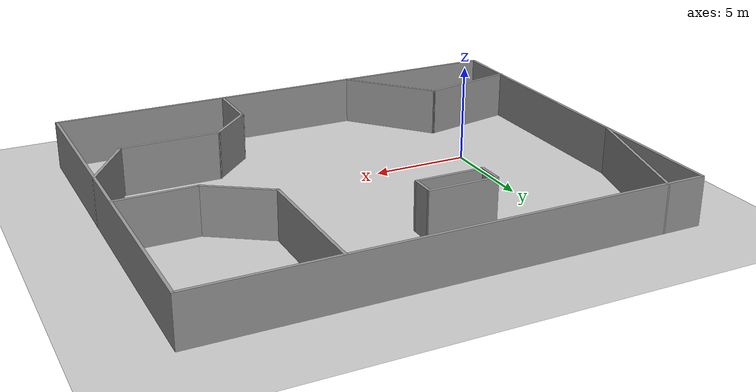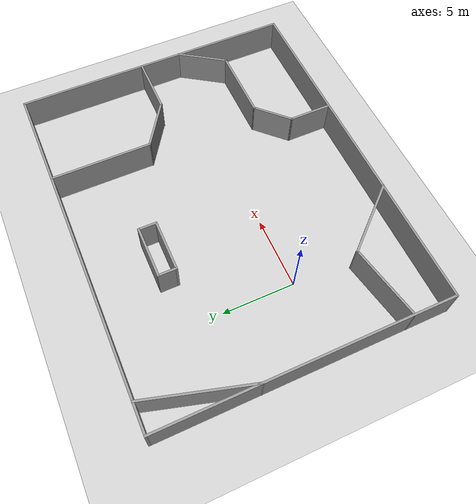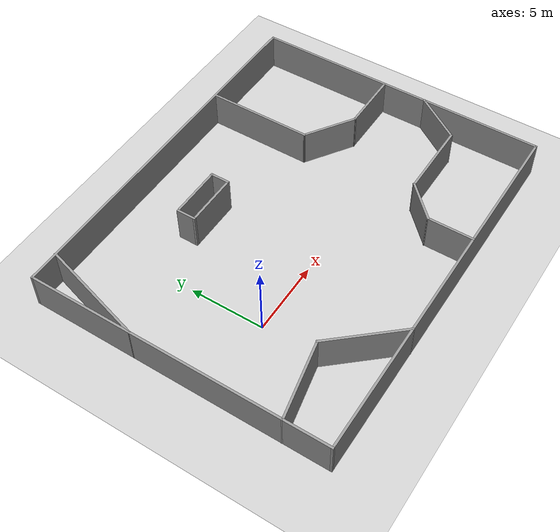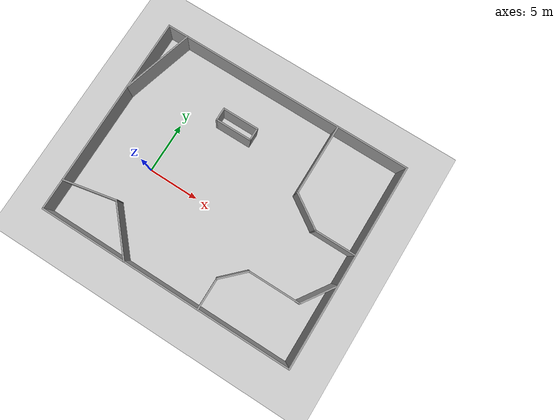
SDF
<sdf version="1.6">
 <world name="default">
  <light name="sun" type="directional">
   <pose>0 0 10 0 -0 0</pose>
   <diffuse>0.8 0.8 0.8 1</diffuse>
   <specular>0.2 0.2 0.2 1</specular>
   <attenuation>
    <range>1000</range>
    <constant>0.9</constant>
    <linear>0.01</linear>
    <quadratic>0.001</quadratic>
   </attenuation>
   <direction>-0.5 0.1 -0.9</direction>
   <spot><inner_angle>0</inner_angle><outer_angle>0</outer_angle><falloff>0</falloff></spot>
  </light>
  <model name="ground_plane">
   <static>1</static>
   <link name="link">
    <collision name="collision">
     <geometry><plane><normal>0 0 1</normal><size>100 100</size></plane></geometry>
     <surface>
      <contact><collide_bitmask>65535</collide_bitmask></contact>
      <friction><ode><mu>100</mu><mu2>50</mu2></ode></friction>
     </surface>
    </collision>
    <visual name="visual">
     <cast_shadows>0</cast_shadows>
     <geometry><plane><normal>0 0 1</normal><size>100 100</size></plane></geometry>
     <material>
      <script><uri>file://media/materials/scripts/gazebo.material</uri><name>Gazebo/Grey</name></script>
     </material>
    </visual>
   </link>
  </model>
  <gravity>0 0 -9.8</gravity>
  <magnetic_field>6e-06 2.3e-05 -4.2e-05</magnetic_field>
  <atmosphere type="adiabatic"/>
  <physics type="ode">
   <max_step_size>0.001</max_step_size>
   <real_time_factor>1</real_time_factor>
   <real_time_update_rate>1000</real_time_update_rate>
  </physics>
  <scene><ambient>0.4 0.4 0.4 1</ambient><background>0.7 0.7 0.7 1</background><shadows>1</shadows></scene>
  <spherical_coordinates>
   <surface_model>EARTH_WGS84</surface_model>
   <latitude_deg>0</latitude_deg>
   <longitude_deg>0</longitude_deg>
   <elevation>0</elevation>
   <heading_deg>0</heading_deg>
  </spherical_coordinates>
  <model name="test_field.world">
   <pose>7 2 0 0 -0 0</pose>
   <link name="Wall_0">
    <collision name="Wall_0_Collision">
     <geometry><box><size>20.15 0.15 2.5</size></box></geometry>
     <pose>0 0 1.25 0 -0 0</pose>
    </collision>
    <visual name="Wall_0_Visual">
     <pose>0 0 1.25 0 -0 0</pose>
     <geometry><box><size>20.15 0.15 2.5</size></box></geometry>
     <material>
      <script><uri>file://media/materials/scripts/gazebo.material</uri><name>Gazebo/Grey</name></script>
      <ambient>1 1 1 1</ambient>
     </material>
     <meta><layer>0</layer></meta>
    </visual>
    <pose>12.4944 0.006557 0 0 -0 -1.5708</pose>
   </link>
   <link name="Wall_1">
    <collision name="Wall_1_Collision">
     <geometry><box><size>25.15 0.15 2.5</size></box></geometry>
     <pose>0 0 1.25 0 -0 0</pose>
    </collision>
    <visual name="Wall_1_Visual">
     <pose>0 0 1.25 0 -0 0</pose>
     <geometry><box><size>25.15 0.15 2.5</size></box></geometry>
     <material>
      <script><uri>file://media/materials/scripts/gazebo.material</uri><name>Gazebo/Grey</name></script>
      <ambient>1 1 1 1</ambient>
     </material>
     <meta><layer>0</layer></meta>
    </visual>
    <pose>-0.005644 -9.99344 0 0 -0 3.14159</pose>
   </link>
   <link name="Wall_2">
    <collision name="Wall_2_Collision">
     <geometry><box><size>20.15 0.15 2.5</size></box></geometry>
     <pose>0 0 1.25 0 -0 0</pose>
    </collision>
    <visual name="Wall_2_Visual">
     <pose>0 0 1.25 0 -0 0</pose>
     <geometry><box><size>20.15 0.15 2.5</size></box></geometry>
     <material>
      <script><uri>file://media/materials/scripts/gazebo.material</uri><name>Gazebo/Grey</name></script>
      <ambient>1 1 1 1</ambient>
     </material>
     <meta><layer>0</layer></meta>
    </visual>
    <pose>-12.5056 0.006557 0 0 -0 1.5708</pose>
   </link>
   <link name="Wall_24">
    <collision name="Wall_24_Collision">
     <geometry><box><size>7.43011 0.15 2.5</size></box></geometry>
     <pose>0 0 1.25 0 -0 0</pose>
    </collision>
    <visual name="Wall_24_Visual">
     <pose>0 0 1.25 0 -0 0</pose>
     <geometry><box><size>7.43011 0.15 2.5</size></box></geometry>
     <material>
      <script><uri>file://media/materials/scripts/gazebo.material</uri><name>Gazebo/Grey</name></script>
      <ambient>1 1 1 1</ambient>
     </material>
     <meta><layer>0</layer></meta>
    </visual>
    <pose>-11.5056 6.50656 0 0 -0 1.2925</pose>
   </link>
   <link name="Wall_26">
    <collision name="Wall_26_Collision">
     <geometry><box><size>5.24902 0.15 2.5</size></box></geometry>
     <pose>0 0 1.25 0 -0 0</pose>
    </collision>
    <visual name="Wall_26_Visual">
     <pose>0 0 1.25 0 -0 0</pose>
     <geometry><box><size>5.24902 0.15 2.5</size></box></geometry>
     <material>
      <script><uri>file://media/materials/scripts/gazebo.material</uri><name>Gazebo/Grey</name></script>
      <ambient>1 1 1 1</ambient>
     </material>
     <meta><layer>0</layer></meta>
    </visual>
    <pose>-10.0056 -6.49344 0 0 -0 0.197396</pose>
   </link>
   <link name="Wall_27">
    <collision name="Wall_27_Collision">
     <geometry><box><size>5.46507 0.15 2.5</size></box></geometry>
     <pose>0 0 1.25 0 -0 0</pose>
    </collision>
    <visual name="Wall_27_Visual">
     <pose>0 0 1.25 0 -0 0</pose>
     <geometry><box><size>5.46507 0.15 2.5</size></box></geometry>
     <material>
      <script><uri>file://media/materials/scripts/gazebo.material</uri><name>Gazebo/Grey</name></script>
      <ambient>1 1 1 1</ambient>
     </material>
     <meta><layer>0</layer></meta>
    </visual>
    <pose>-5.75564 -7.99344 0 0 -0 -0.851966</pose>
   </link>
   <link name="Wall_29">
    <collision name="Wall_29_Collision">
     <geometry><box><size>3.15 0.15 2.5</size></box></geometry>
     <pose>0 0 1.25 0 -0 0</pose>
    </collision>
    <visual name="Wall_29_Visual">
     <pose>0 0 1.25 0 -0 0</pose>
     <geometry><box><size>3.15 0.15 2.5</size></box></geometry>
     <material>
      <script><uri>file://media/materials/scripts/gazebo.material</uri><name>Gazebo/Grey</name></script>
      <ambient>1 1 1 1</ambient>
     </material>
     <meta><layer>0</layer></meta>
    </visual>
    <pose>3.49436 -8.49344 0 0 -0 1.5708</pose>
   </link>
   <link name="Wall_3">
    <collision name="Wall_3_Collision">
     <geometry><box><size>25.15 0.15 2.5</size></box></geometry>
     <pose>0 0 1.25 0 -0 0</pose>
    </collision>
    <visual name="Wall_3_Visual">
     <pose>0 0 1.25 0 -0 0</pose>
     <geometry><box><size>25.15 0.15 2.5</size></box></geometry>
     <material>
      <script><uri>file://media/materials/scripts/gazebo.material</uri><name>Gazebo/Grey</name></script>
      <ambient>1 1 1 1</ambient>
     </material>
     <meta><layer>0</layer></meta>
    </visual>
    <pose>-0.005644 10.0066 0 0 -0 0</pose>
   </link>
   <link name="Wall_30">
    <collision name="Wall_30_Collision">
     <geometry><box><size>2.97843 0.15 2.5</size></box></geometry>
     <pose>0 0 1.25 0 -0 0</pose>
    </collision>
    <visual name="Wall_30_Visual">
     <pose>0 0 1.25 0 -0 0</pose>
     <geometry><box><size>2.97843 0.15 2.5</size></box></geometry>
     <material>
      <script><uri>file://media/materials/scripts/gazebo.material</uri><name>Gazebo/Grey</name></script>
      <ambient>1 1 1 1</ambient>
     </material>
     <meta><layer>0</layer></meta>
    </visual>
    <pose>4.49436 -5.99344 0 0 -0 0.785398</pose>
   </link>
   <link name="Wall_31">
    <collision name="Wall_31_Collision">
     <geometry><box><size>5.15 0.15 2.5</size></box></geometry>
     <pose>0 0 1.25 0 -0 0</pose>
    </collision>
    <visual name="Wall_31_Visual">
     <pose>0 0 1.25 0 -0 0</pose>
     <geometry><box><size>5.15 0.15 2.5</size></box></geometry>
     <material>
      <script><uri>file://media/materials/scripts/gazebo.material</uri><name>Gazebo/Grey</name></script>
      <ambient>1 1 1 1</ambient>
     </material>
     <meta><layer>0</layer></meta>
    </visual>
    <pose>7.99436 -4.99344 0 0 -0 0</pose>
   </link>
   <link name="Wall_32">
    <collision name="Wall_32_Collision">
     <geometry><box><size>3.75555 0.15 2.5</size></box></geometry>
     <pose>0 0 1.25 0 -0 0</pose>
    </collision>
    <visual name="Wall_32_Visual">
     <pose>0 0 1.25 0 -0 0</pose>
     <geometry><box><size>3.75555 0.15 2.5</size></box></geometry>
     <material>
      <script><uri>file://media/materials/scripts/gazebo.material</uri><name>Gazebo/Grey</name></script>
      <ambient>1 1 1 1</ambient>
     </material>
     <meta><layer>0</layer></meta>
    </visual>
    <pose>11.4944 -3.49344 0 0 -0 0.982794</pose>
   </link>
   <link name="Wall_34">
    <collision name="Wall_34_Collision">
     <geometry><box><size>7.15 0.15 2.5</size></box></geometry>
     <pose>0 0 1.25 0 -0 0</pose>
    </collision>
    <visual name="Wall_34_Visual">
     <pose>0 0 1.25 0 -0 0</pose>
     <geometry><box><size>7.15 0.15 2.5</size></box></geometry>
     <material>
      <script><uri>file://media/materials/scripts/gazebo.material</uri><name>Gazebo/Grey</name></script>
      <ambient>1 1 1 1</ambient>
     </material>
     <meta><layer>0</layer></meta>
    </visual>
    <pose>5.49436 6.50656 0 0 -0 -1.5708</pose>
   </link>
   <link name="Wall_35">
    <collision name="Wall_35_Collision">
     <geometry><box><size>3.75555 0.15 2.5</size></box></geometry>
     <pose>0 0 1.25 0 -0 0</pose>
    </collision>
    <visual name="Wall_35_Visual">
     <pose>0 0 1.25 0 -0 0</pose>
     <geometry><box><size>3.75555 0.15 2.5</size></box></geometry>
     <material>
      <script><uri>file://media/materials/scripts/gazebo.material</uri><name>Gazebo/Grey</name></script>
      <ambient>1 1 1 1</ambient>
     </material>
     <meta><layer>0</layer></meta>
    </visual>
    <pose>6.99436 2.00656 0 0 -0 -0.588003</pose>
   </link>
   <link name="Wall_36">
    <collision name="Wall_36_Collision">
     <geometry><box><size>4.15 0.15 2.5</size></box></geometry>
     <pose>0 0 1.25 0 -0 0</pose>
    </collision>
    <visual name="Wall_36_Visual">
     <pose>0 0 1.25 0 -0 0</pose>
     <geometry><box><size>4.15 0.15 2.5</size></box></geometry>
     <material>
      <script><uri>file://media/materials/scripts/gazebo.material</uri><name>Gazebo/Grey</name></script>
      <ambient>1 1 1 1</ambient>
     </material>
     <meta><layer>0</layer></meta>
    </visual>
    <pose>10.4944 1.00656 0 0 -0 0</pose>
   </link>
   <link name="Wall_38">
    <collision name="Wall_38_Collision">
     <geometry><box><size>3.65 0.15 2.5</size></box></geometry>
     <pose>0 0 1.25 0 -0 0</pose>
    </collision>
    <visual name="Wall_38_Visual">
     <pose>0 0 1.25 0 -0 0</pose>
     <geometry><box><size>3.65 0.15 2.5</size></box></geometry>
     <material>
      <script><uri>file://media/materials/scripts/gazebo.material</uri><name>Gazebo/Grey</name></script>
      <ambient>1 1 1 1</ambient>
     </material>
     <meta><layer>0</layer></meta>
    </visual>
    <pose>-2.25564 6.00656 0 0 -0 0</pose>
   </link>
   <link name="Wall_39">
    <collision name="Wall_39_Collision">
     <geometry><box><size>1.35 0.15 2.5</size></box></geometry>
     <pose>0 0 1.25 0 -0 0</pose>
    </collision>
    <visual name="Wall_39_Visual">
     <pose>0 0 1.25 0 -0 0</pose>
     <geometry><box><size>1.35 0.15 2.5</size></box></geometry>
     <material>
      <script><uri>file://media/materials/scripts/gazebo.material</uri><name>Gazebo/Grey</name></script>
      <ambient>1 1 1 1</ambient>
     </material>
     <meta><layer>0</layer></meta>
    </visual>
    <pose>-0.505644 5.40656 0 0 -0 -1.5708</pose>
   </link>
   <link name="Wall_40">
    <collision name="Wall_40_Collision">
     <geometry><box><size>3.65 0.15 2.5</size></box></geometry>
     <pose>0 0 1.25 0 -0 0</pose>
    </collision>
    <visual name="Wall_40_Visual">
     <pose>0 0 1.25 0 -0 0</pose>
     <geometry><box><size>3.65 0.15 2.5</size></box></geometry>
     <material>
      <script><uri>file://media/materials/scripts/gazebo.material</uri><name>Gazebo/Grey</name></script>
      <ambient>1 1 1 1</ambient>
     </material>
     <meta><layer>0</layer></meta>
    </visual>
    <pose>-2.25564 4.80656 0 0 -0 3.14159</pose>
   </link>
   <link name="Wall_41">
    <collision name="Wall_41_Collision">
     <geometry><box><size>1.35 0.15 2.5</size></box></geometry>
     <pose>0 0 1.25 0 -0 0</pose>
    </collision>
    <visual name="Wall_41_Visual">
     <pose>0 0 1.25 0 -0 0</pose>
     <geometry><box><size>1.35 0.15 2.5</size></box></geometry>
     <material>
      <script><uri>file://media/materials/scripts/gazebo.material</uri><name>Gazebo/Grey</name></script>
      <ambient>1 1 1 1</ambient>
     </material>
     <meta><layer>0</layer></meta>
    </visual>
    <pose>-4.00564 5.40656 0 0 -0 1.5708</pose>
   </link>
   <static>1</static>
  </model>
 </world>
</sdf>
